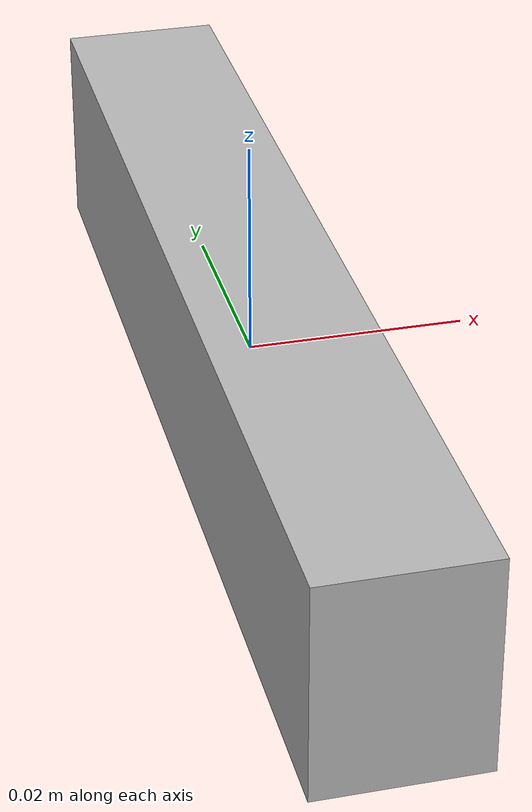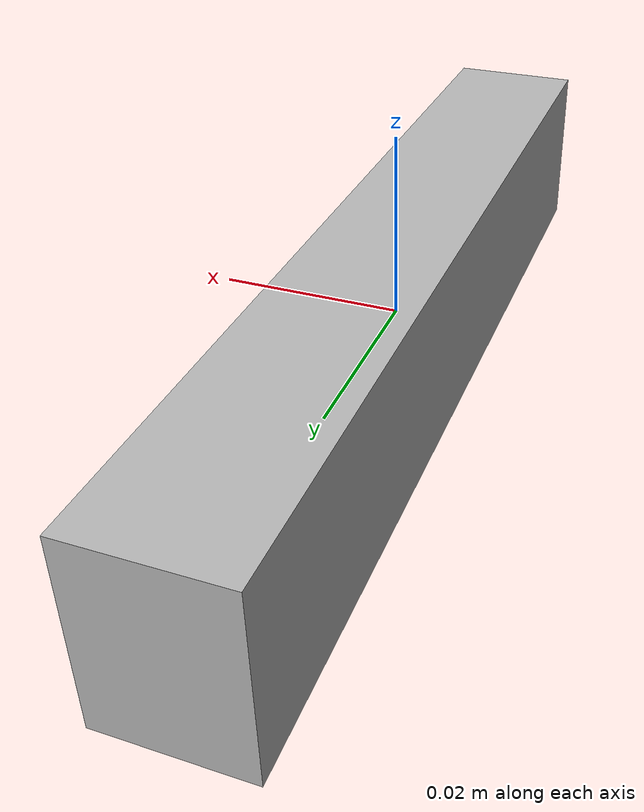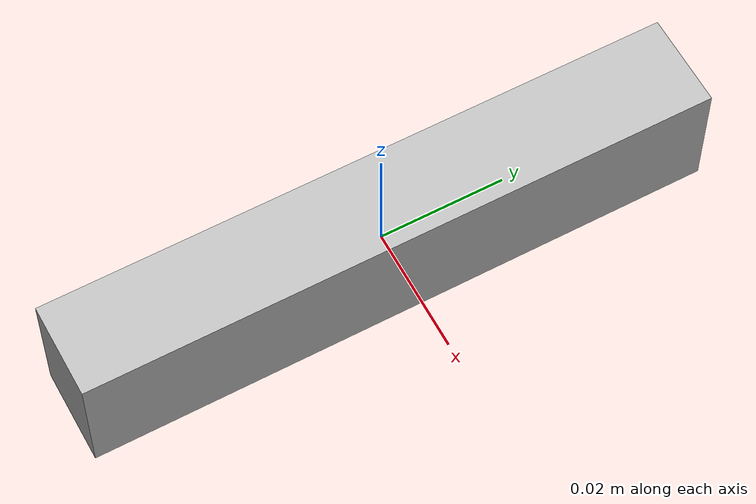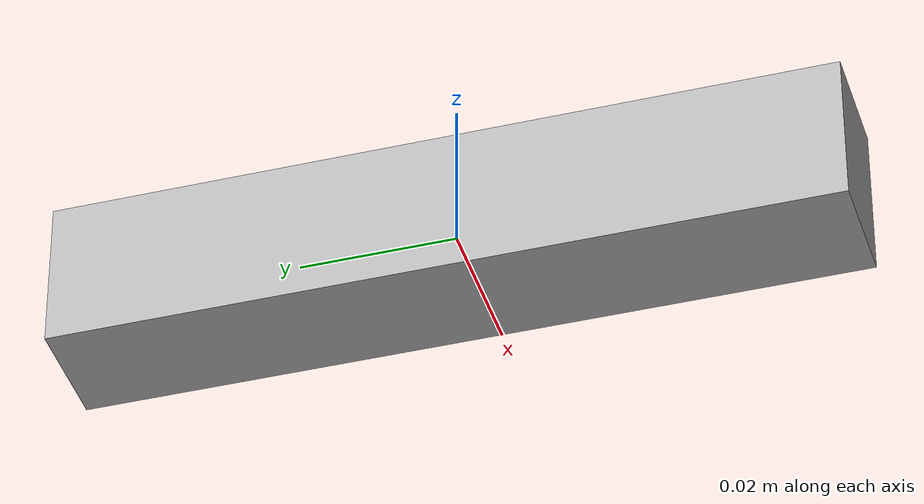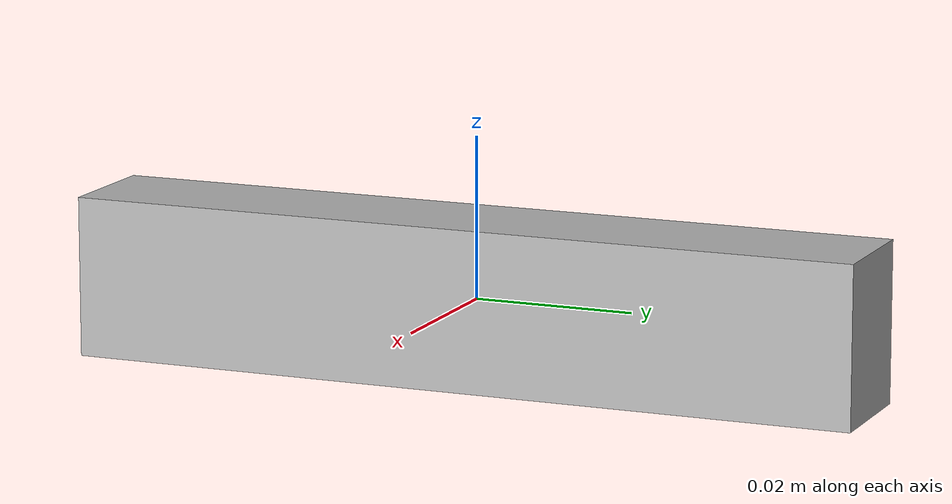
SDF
<?xml version="1.0" ?>
<sdf version="1.5">
  <model name="stereo_camera">
    <link name="link">
      <pose>0 0 0 0 0 0</pose>
      <inertial>
        <mass>0.001</mass>
        <inertia>
          <ixx>0.00000166667</ixx>
          <iyy>0.00000166667</iyy>
          <izz>0.00000166667</izz>
        </inertia>
      </inertial>
      <visual name="visual">
        <geometry>
          <box>
            <size>0.015 0.1 0.02</size>
          </box>
        </geometry>
      </visual>
      <sensor name="camera" type="multicamera">
        <always_on>1</always_on>
        <update_rate>30</update_rate>
        <visualize>false</visualize>
        <camera name="left">
          <pose>0 0.06 0 0 0 0</pose>
          <horizontal_fov>1.5708</horizontal_fov>
          <image>
            <width>752</width>
            <height>480</height>
            <format>R8G8B8</format>
          </image>
          <clip>
            <near>0.1</near>
            <far>300</far>
          </clip>
        </camera>
        <camera name="right">
          <pose>0 -0.06 0 0 0 0</pose>
          <horizontal_fov>1.5708</horizontal_fov>
          <image>
            <width>752</width>
            <height>480</height>
            <format>R8G8B8</format>
          </image>
          <clip>
            <near>0.1</near>
            <far>300</far>
          </clip>
        </camera>
        <plugin name="stereo_camera_controller" filename="libgazebo_ros_multicamera.so">
          <robotNamespace></robotNamespace>
          <alwaysOn>true</alwaysOn>
          <updateRate>30</updateRate>
          <cameraName>/stereo_camera</cameraName>
          <imageTopicName>image_raw</imageTopicName>
          <cameraInfoTopicName>camera_info</cameraInfoTopicName>
          <frameName>stereo_camera_frame</frameName>
          <hackBaseline>0.12</hackBaseline>
          <Fx>376.0</Fx>
          <Fy>376.0</Fy>
          <Cx>376.0</Cx>
          <Cy>240.0</Cy>
          <distortionK1>-0.1</distortionK1>
          <distortionK2>0.01</distortionK2>
          <distortionK3>0.0</distortionK3>
          <distortionT1>5e-5</distortionT1>
          <distortionT2>-1e-4</distortionT2>
        </plugin>
      </sensor>
      <sensor name="depth" type="depth">
        <update_rate>20</update_rate>
        <camera>
	  <pose>0 0.03 0 0 0 0</pose>
          <horizontal_fov>1.047198</horizontal_fov>
          <image>
            <width>640</width>
            <height>480</height>
            <format>R8G8B8</format>
          </image>
          <clip>
            <near>0.05</near>
            <far>3</far>
          </clip>
        </camera>
        <plugin name="kinect_controller" filename="libgazebo_ros_openni_kinect.so">
          <robotNamespace></robotNamespace>
          <baseline>0.2</baseline>
          <alwaysOn>true</alwaysOn>
          <updateRate>1.0</updateRate>
          <cameraName>realsense/depth_camera</cameraName>
          <imageTopicName>color/image_raw</imageTopicName>
          <cameraInfoTopicName>color/camera_info</cameraInfoTopicName>
          <depthImageTopicName>depth/image_raw</depthImageTopicName>
          <depthImageInfoTopicName>depth/camera_info</depthImageInfoTopicName>
          <pointCloudTopicName>depth/points</pointCloudTopicName>
          <frameName>depth_camera_base</frameName>
          <pointCloudCutoff>0.05</pointCloudCutoff>
          <pointCloudCutoffMax>3.0</pointCloudCutoffMax>
          <distortionK1>0.00000001</distortionK1>
          <distortionK2>0.00000001</distortionK2>
          <distortionK3>0.00000001</distortionK3>
          <distortionT1>0.00000001</distortionT1>
          <distortionT2>0.00000001</distortionT2>
          <CxPrime>0</CxPrime>
          <Cx>0</Cx>
          <Cy>0</Cy>
          <focalLength>0</focalLength>
          <hackBaseline>0</hackBaseline>
        </plugin>
      </sensor>
    </link>
  </model>
</sdf>
